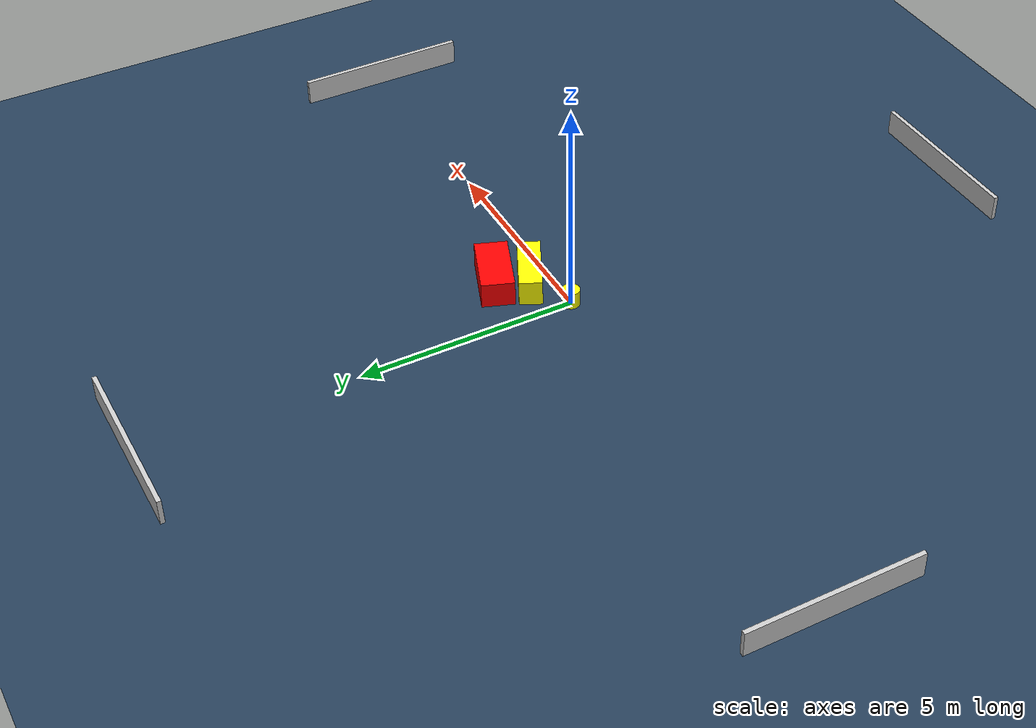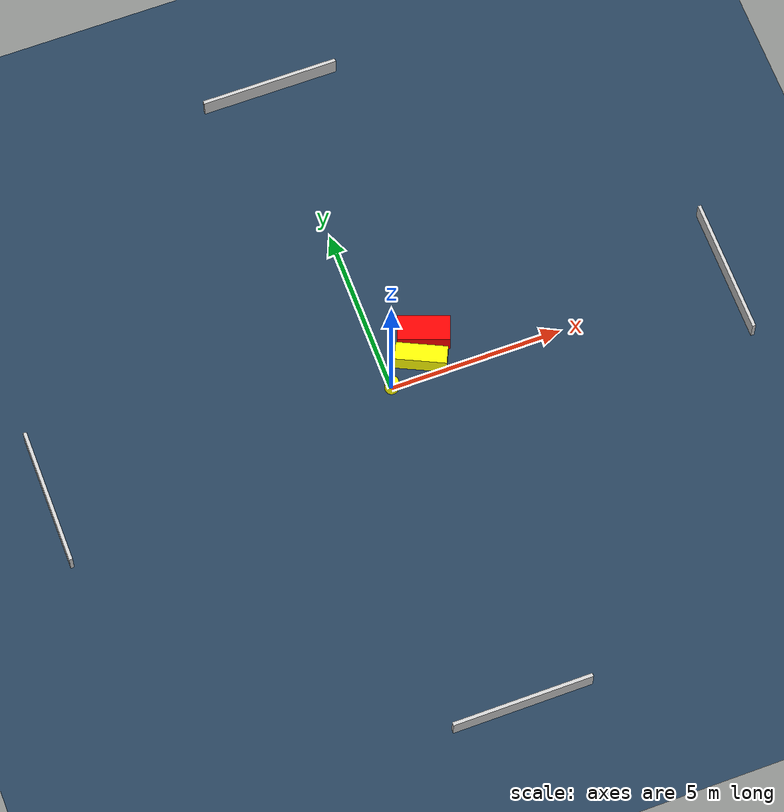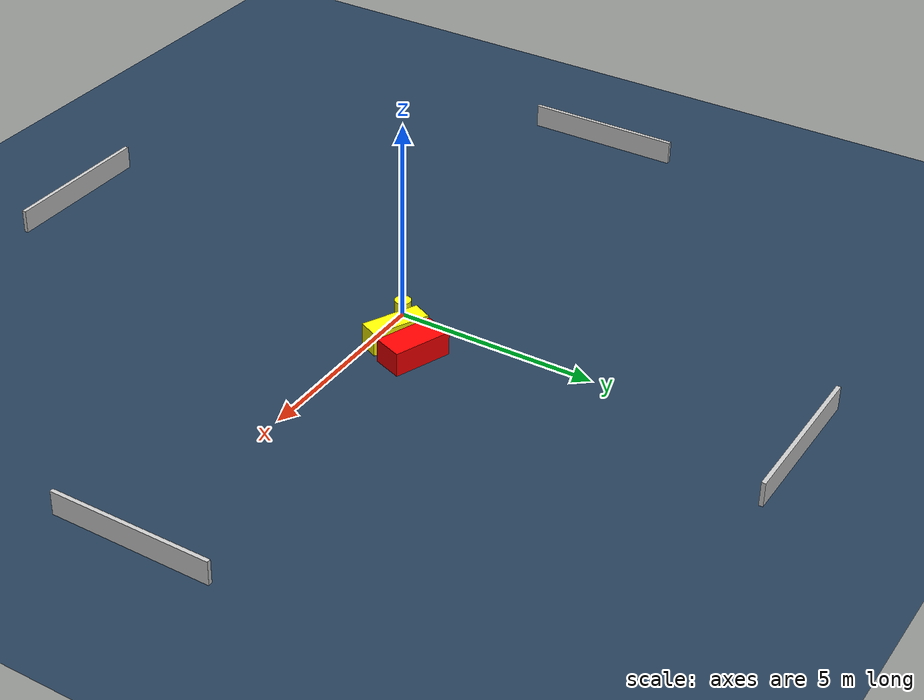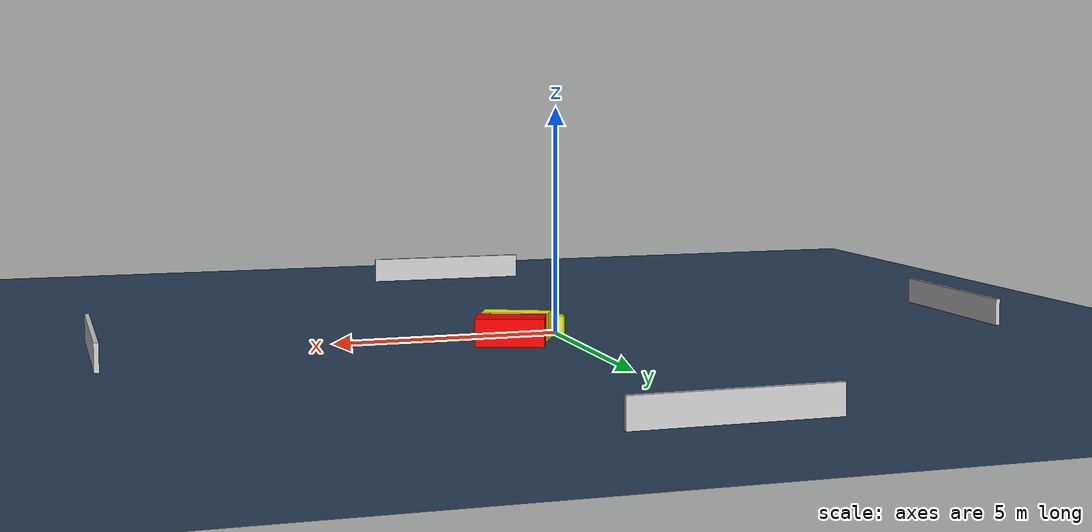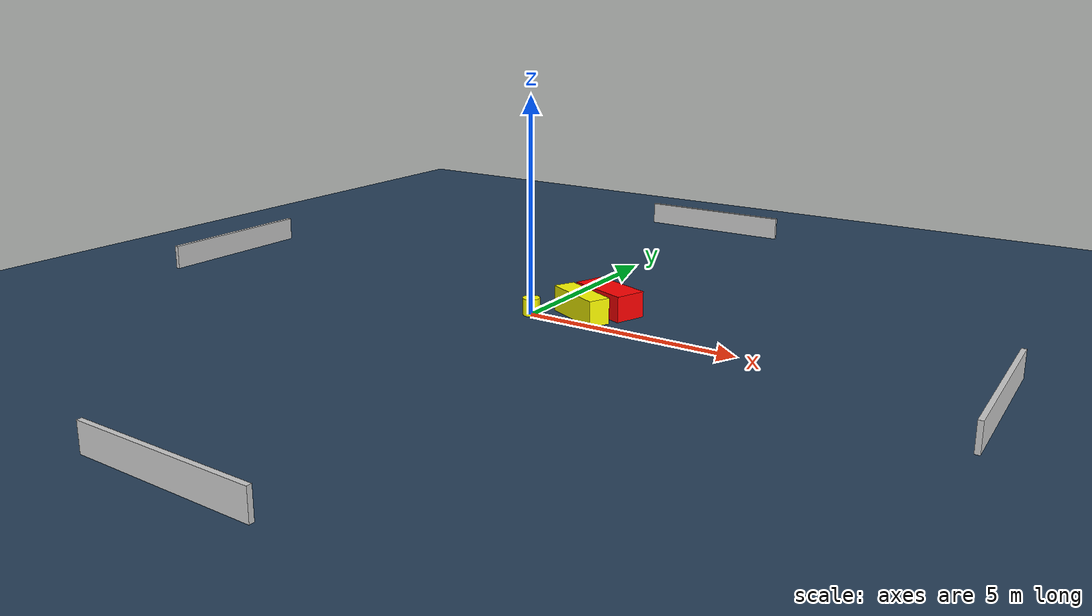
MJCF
<?xml version="1.0" ?>
<mujoco model="generated_environment">
  <option timestep="0.01" integrator="RK4" cone="elliptic"/>
  <default>
    <geom density="1"/>
  </default>
  <asset>
    <texture builtin="gradient" height="3072" name="skybox" rgb1="0.3 0.5 0.7" rgb2="0 0 0" type="skybox" width="512"/>
    <texture builtin="checker" height="300" name="groundplane" rgb1="0.2 0.3 0.4" rgb2="0.1 0.2 0.3" type="2d" width="300"/>
    <material name="groundplane" reflectance="0.2" texrepeat="5 5" texture="groundplane"/>
  </asset>
  <worldbody>
    <light dir="0 0 -1" directional="true" pos="0 0 1.5"/>
    <geom condim="3" friction="0.5 0.005 0.001" material="groundplane" name="floor" pos="0 0 0" size="0 0 0.05" type="plane"/>
    <body name="walls">
      <geom name="wall_1" condim="4" pos="-10.0 0.0 0.3" rgba="0.800000011920929 0.800000011920929 0.800000011920929 1.0" size="0.05 2.0 0.3" type="box"/>
      <geom name="wall_2" condim="4" pos="10.0 0.0 0.3" rgba="0.800000011920929 0.800000011920929 0.800000011920929 1.0" size="0.05 2.0 0.3" type="box"/>
      <geom name="wall_3" condim="4" pos="0.0 -10.0 0.3" rgba="0.800000011920929 0.800000011920929 0.800000011920929 1.0" size="2.0 0.05 0.3" type="box"/>
      <geom name="wall_4" condim="4" pos="0.0 10.0 0.3" rgba="0.800000011920929 0.800000011920929 0.800000011920929 1.0" size="2.0 0.05 0.3" type="box"/>
    </body>
    <body name="robot">
      <joint name="joint_x" type="slide" pos="0 0 0" axis="1 0 0"/>
      <joint name="joint_y" type="slide" pos="0 0 0" axis="0 1 0"/>
      <geom name="robot" type="cylinder" pos="0.0 0.0 0.2" size="0.2 0.2 0.0" mass="5.0" friction="1.0 0.005 0.0001" condim="4" rgba="1.0 1.0 0.0 1.0"/>
    </body>
    <body name="obstacle_1_movable">
      <geom name="obstacle_1_movable" condim="4" pos="1.0477593196601707 0.4696955490334377 0.3" euler="0 0 154.39529433461576" friction="0.0 0.005 0.001" rgba="1.0 1.0 0.0 1.0" size="0.7317343211308986 0.26042188125498145 0.3" type="box" mass="0.1"/>
      <joint type="free"/>
    </body>
    <body name="obstacle_2_static">
      <geom name="obstacle_2_static" condim="4" pos="1.3827180612247876 1.1661580200847224 0.3" euler="0 0 69.54160798101763" friction="0.0 0.005 0.001" rgba="1.0 0.0 0.0 1.0" size="0.3736536415652253 0.7408641563735932 0.3" type="box"/>
    </body>
  </worldbody>
  <actuator>
    <motor name="actuator_x" joint="joint_x" gear="1" ctrlrange="-1 1"/>
    <motor name="actuator_y" joint="joint_y" gear="1" ctrlrange="-1 1"/>
  </actuator>
</mujoco>
